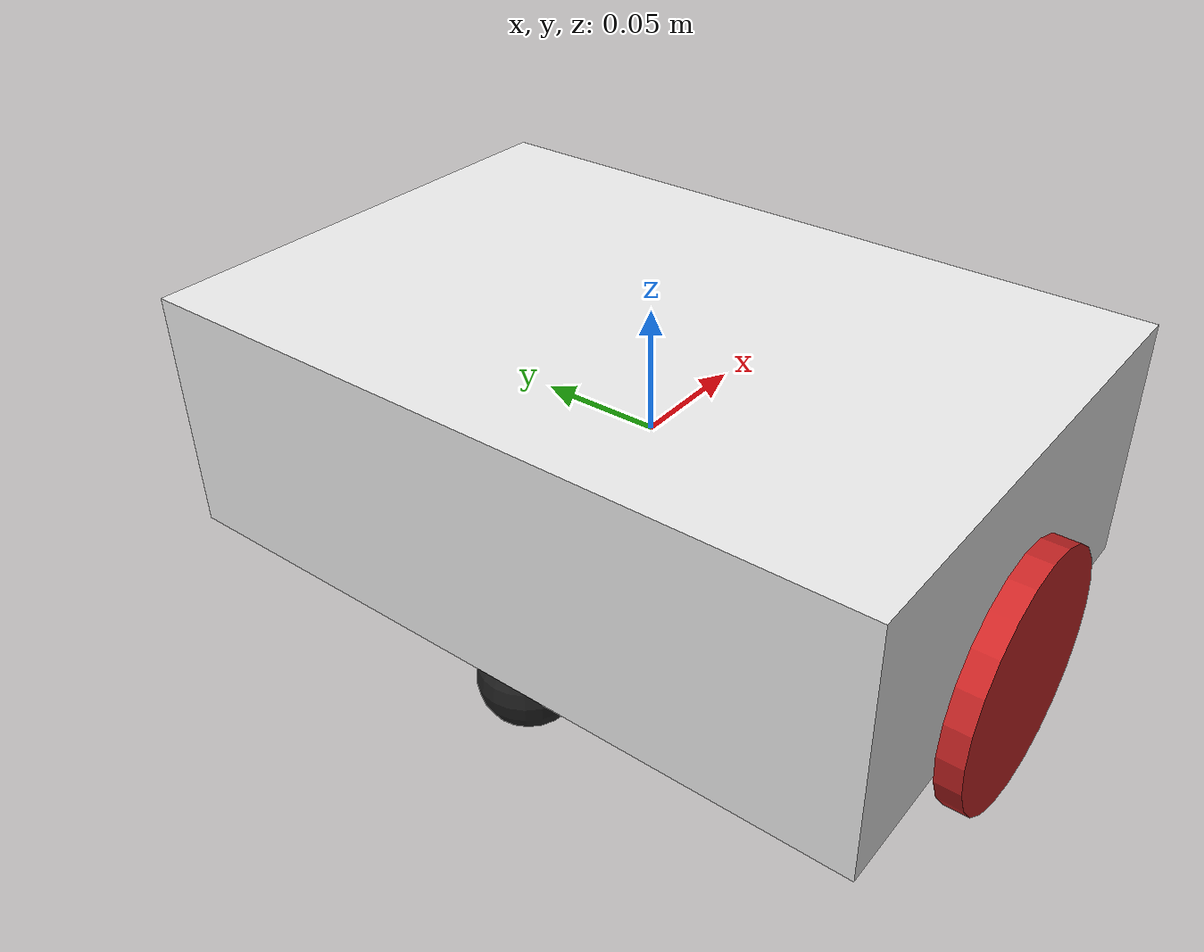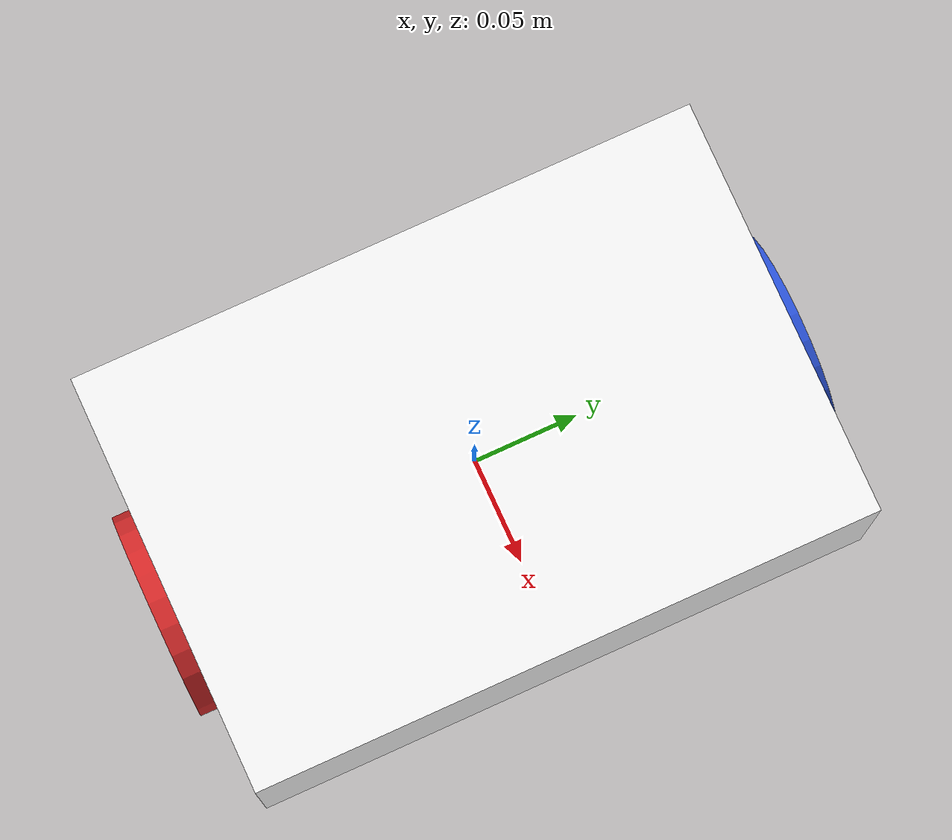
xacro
<?xml version="1.0"?>
<robot xmlns:xacro="http://www.ros.org/wiki/xacro" name="robot_2W">
  <xacro:property name="wheel_radius" value="0.050" />
  <xacro:property name="wheel_width" value="0.010" />
  <xacro:property name="body_height" value="0.1" />
  <xacro:property name="body_width" value="0.3" />
  <xacro:property name="body_length" value="0.2" />
  <xacro:property name="contact_radius" value="${(wheel_radius - 0.01)/2}"/>

  <gazebo reference="base_link">
    <material>Gazebo/White</material>
    <mu1>0.2</mu1>
    <mu2>0.2</mu2>
  </gazebo>

  <gazebo reference="wheel_R">
    <material>Gazebo/Red</material>
    <mu1>0.84</mu1>
    <mu2>0.84</mu2>
  </gazebo>

  <gazebo reference="wheel_L">
    <material>Gazebo/Blue</material>
    <mu1>0.84</mu1>
    <mu2>0.84</mu2>
  </gazebo>

  <gazebo reference="contact_front">
    <material>Gazebo/Black</material>
    <mu1>0</mu1>
    <mu2>0</mu2>
  </gazebo>

  <gazebo reference="contact_back">
    <material>Gazebo/Black</material>
    <mu1>0</mu1>
    <mu2>0</mu2>
  </gazebo>

  <link name="base_link">
    <visual>
      <geometry>
        <box size="${body_length} ${body_width} ${body_height}"/>
      </geometry>
    </visual>

    <collision>
      <geometry>
        <box size="${body_length} ${body_width} ${body_height}"/>
      </geometry>
    </collision>

    <inertial>
      <mass value="0.18"/>
      <inertia ixx="6.0e-4" ixy="0" ixz="0" iyy="6.0e-4" iyz="0" izz="6.0e-4"/>
    </inertial>
  </link>

  <link name="wheel_L">
    <visual>
      <geometry>
        <cylinder length="${wheel_width}" radius="${wheel_radius}"/>
      </geometry>
    </visual>

    <collision>
      <geometry>
        <cylinder length="${wheel_width}" radius="${wheel_radius}"/>
      </geometry>
    </collision>

    <inertial>
      <mass value="0.03"/>
      <inertia ixx="1.75e-5" ixy="0.0" ixz="0.0" iyy="1.75e-5" iyz="0.0" izz="1.75e-5"/>
    </inertial>
  </link>

  <link name="wheel_R">
    <visual>
      <geometry>
        <cylinder length="${wheel_width}" radius="${wheel_radius}"/>
    </geometry>
    </visual>

    <collision>
      <geometry>
        <cylinder length="${wheel_width}" radius="${wheel_radius}"/>
      </geometry>
    </collision>

    <inertial>
      <mass value="0.03"/>
      <inertia ixx="1.75e-5" ixy="0.0" ixz="0.0" iyy="1.75e-5" iyz="0.0" izz="1.75e-5"/>
    </inertial>
  </link>

  <link name="contact_front">
    <visual>
      <geometry>
        <sphere radius="${contact_radius}"/>
        <origin xyz="0 0 ${contact_radius}"/>
      </geometry>
    </visual>

    <collision>
      <geometry>
          <sphere radius="${contact_radius}"/>
          <origin xyz="0 0 ${contact_radius}"/>
      </geometry>
    </collision>

    <inertial>
      <mass value="0.01"/>
      <inertia ixx="6.0e-4" ixy="0" ixz="0" iyy="6.0e-4" iyz="0" izz="6.0e-4"/>
    </inertial>
  </link>

  <link name="contact_back">
    <visual>
      <geometry>
          <sphere radius="${contact_radius}"/>
          <origin xyz="0 0 ${contact_radius}"/>
      </geometry>
    </visual>

    <collision>
      <geometry>
          <sphere radius="${contact_radius}"/>
          <origin xyz="0 0 ${contact_radius}"/>
      </geometry>
    </collision>

    <inertial>
      <mass value="0.01"/>
      <inertia ixx="6.0e-4" ixy="0" ixz="0" iyy="6.0e-4" iyz="0" izz="6.0e-4"/>
    </inertial>
  </link>

  <joint name="jointL" type="continuous">
    <parent link="base_link"/>
    <child link="wheel_L"/>
    <axis xyz="0 0 -1"/>
    <origin xyz="0 ${body_width/2 + wheel_width/2} -${body_height/2 - 0.01}" rpy="${pi/2} 0 0" />
    <dynamics friction="0.1"/>
  </joint>

  <joint name="jointR" type="continuous">
    <parent link="base_link"/>
    <child link="wheel_R"/>
    <axis xyz="0 0 -1"/>
    <origin xyz="0 -${body_width/2 + wheel_width/2} -${body_height/2 - 0.01}" rpy="${pi/2} 0 0" />
    <dynamics friction="0.1"/>
  </joint>

  <joint name="jointFront" type="fixed">
    <parent link="base_link"/>
    <child link="contact_front"/>
    <origin xyz="+${3*body_length/8} 0 -${body_height/2 + contact_radius}"/>
  </joint>

  <joint name="jointBack" type="fixed">
    <parent link="base_link"/>
    <child link="contact_back"/>
    <origin xyz="-${3*body_length/8} 0 -${body_height/2 + contact_radius}"/>
  </joint>

  <transmission name="left_wheel_transmission">
  <type>transmission_interface/SimpleTransmission</type>
  <joint name="jointL">
    <hardwareInterface>hardware_interface/VelocityJointInterface</hardwareInterface>
  </joint>
  <actuator name="left_wheel_actuator">
    <mechanicalReduction>7</mechanicalReduction>
    <hardwareInterface>VelocityJointInterface</hardwareInterface>
  </actuator>
</transmission>

<transmission name="right_wheel_transmission">
  <type>transmission_interface/SimpleTransmission</type>
  <joint name="jointR">
    <hardwareInterface>hardware_interface/VelocityJointInterface</hardwareInterface>
  </joint>
  <actuator name="right_wheel_actuator">
    <mechanicalReduction>7</mechanicalReduction>
    <hardwareInterface>VelocityJointInterface</hardwareInterface>
  </actuator>
</transmission>

<gazebo>
    <plugin name="gazebo_ros_control" filename="libgazebo_ros_control.so">
    </plugin>
</gazebo>

</robot>
